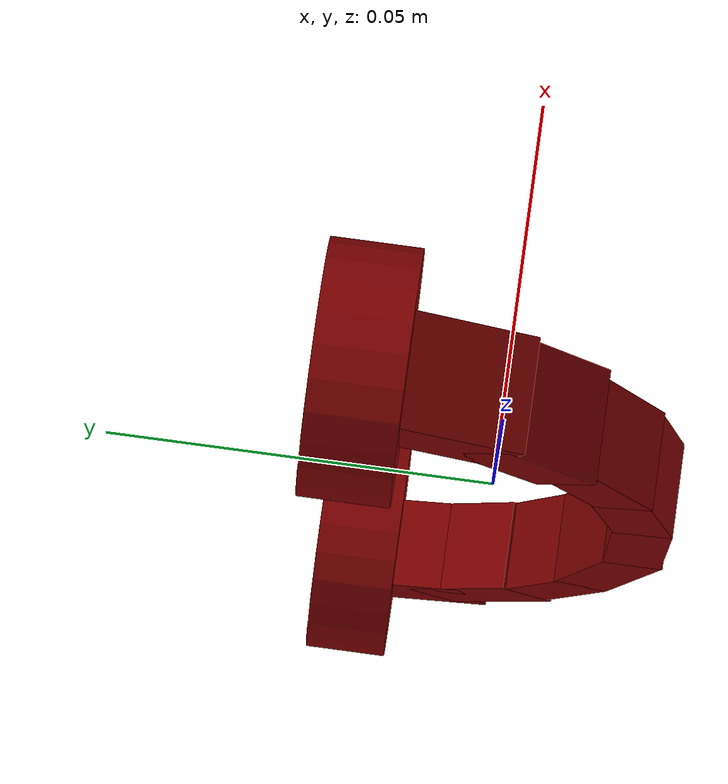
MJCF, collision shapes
<?xml version='1.0' encoding='UTF-8'?>
<mujoco model="model">
  <option timestep="0.002" gravity="0.0 0.0 -9.81"/>
  <compiler angle="radian"/>
  <asset>
    <mesh file="visuals/CabinetHandle045.obj" name="CabinetHandle045_vis"/>
    <texture file="visuals/T_BC001.png" name="tex" type="2d"/>
    <material name="mat" rgba="1 1 1 1.0" texture="tex" shininess="0.4472135901451111" specular="0.3103448502657381"/>
  </asset>
  <default>
    <default class="visual">
      <geom conaffinity="0" contype="0" group="1" type="mesh"/>
    </default>
    <default class="collision">
      <geom group="0" rgba="0.5 0 0 0.5" density="1.0" solref="0.004 1" solimp="0.998 0.998 0.001"/>
    </default>
    <default class="spawn">
      <geom group="0" rgba="1 1 1 0.5" contype="0" conaffinity="0"/>
      <site group="0" rgba="1 1 1 0.5"/>
    </default>
    <default class="region">
      <geom group="1" conaffinity="0" contype="0" rgba="0 1 0 0" mass="0"/>
    </default>
  </default>
  <worldbody>
    <body>
      <body name="object">
        <geom mesh="CabinetHandle045_vis" type="mesh" solimp="0.998 0.998 0.001" solref="0.001 1" friction="0.95 0.3 0.1" class="visual" material="mat"/>
        <geom type="cylinder" pos="-1.5867421878800505e-17 0.017213093116879463 0.06951788067817688" size="0.015250405296683311 0.00547592481598258" quat="0.7071067690849304 0.7071067690849304 -1.5700926965105832e-16 3.431546515433212e-24" class="collision"/>
        <geom type="cylinder" pos="-1.5867421878800505e-17 0.017213093116879463 -0.06935836374759674" size="0.015250405296683311 0.00547592481598258" quat="0.7071067690849304 0.7071067690849304 -1.5700926965105832e-16 3.431546515433212e-24" class="collision"/>
        <geom type="box" pos="0.0 -0.019310923293232918 0.0" size="0.006017349194735289 0.003801273414865136 0.013986869715154171" quat="1.0 0.0 0.0 0.0" class="collision"/>
        <geom type="box" pos="5.278064126411008e-18 -0.017436496913433075 0.0237702876329422" size="0.006017348263412714 0.0037890728563070297 0.010659728199243546" quat="0.9958146810531616 -0.0913952961564064 -2.0293832427055492e-17 -3.192348752701582e-25" class="collision"/>
        <geom type="box" pos="9.566074123296073e-18 -0.01173766516149044 0.04308176785707474" size="0.006097167264670134 0.003839333774521947 0.010801127180457115" quat="0.9795345664024353 -0.2012759894132614 -4.4692247550162415e-17 -2.8423640546940056e-24" class="collision"/>
        <geom type="box" pos="-5.866311964666869e-18 -0.016580767929553986 -0.026419520378112793" size="0.006017348263412714 0.003801272949203849 0.013986869715154171" quat="0.9938898086547852 0.11037694662809372 2.4508605506866337e-17 -3.8005220536578527e-25" class="collision"/>
        <geom type="box" pos="1.4074461578977515e-17 -0.002984360558912158 0.05864786356687546" size="0.006974542047828436 0.004391809925436974 0.008905364200472832" quat="0.9478294253349304 -0.31877803802490234 -7.817438462032859e-17 -2.632187143636628e-18" class="collision"/>
        <geom type="box" pos="1.2130061052608316e-17 0.007634549867361784 0.06740467250347137" size="0.006974542047828436 0.005936900153756142 0.008905363269150257" quat="0.8425279855728149 -0.5386525392532349 -2.556285381501007e-17 3.348943280316889e-17" class="collision"/>
        <geom type="box" pos="-1.1546083741059914e-18 -0.009927583858370781 -0.047639150172472" size="0.006017348263412714 0.003801272949203849 0.009320024400949478" quat="0.9765022397041321 0.21550725400447845 8.866954304456055e-19 5.2157819757791344e-18" class="collision"/>
        <geom type="box" pos="1.923107449836012e-18 -0.00040143384831026196 -0.061499953269958496" size="0.006017348263412714 0.004754506051540375 0.009320024400949478" quat="0.9277013540267944 0.3733232319355011 -3.5679122159662115e-17 1.316824882197872e-17" class="collision"/>
        <geom type="box" pos="3.422794792586236e-18 0.009326329454779625 -0.06825394183397293" size="0.006017348263412714 0.005976147949695587 0.009320023469626904" quat="0.81853848695755 0.5744516849517822 -8.4568590017037e-17 2.355737261784873e-17" class="collision"/>
        <geom class="region" name="reg_main" type="box" pos="2.3283064365386963e-10 0.0 0.0" size="0.016112130902707578 0.02398717573285103 0.08550046926736832"/>
      </body>
    </body>
  </worldbody>
  <actuator/>
</mujoco>
